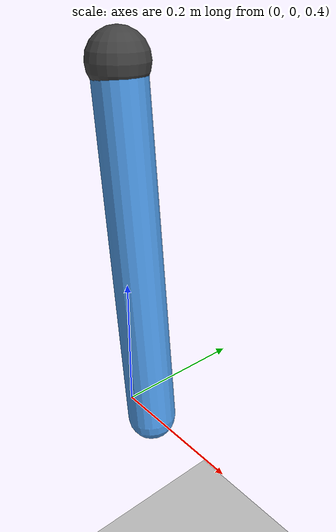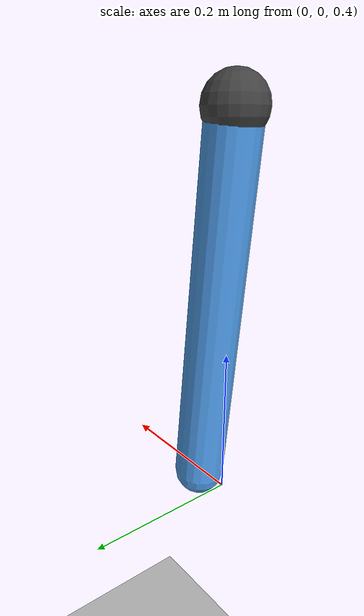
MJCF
<!-- MuJoCo model for a single-link pendulum controlled by a torque motor -->
<mujoco model="simple-pendulum">
    <!-- Global simulation settings: timestep (s), gravity vector, and integrator -->
    <option timestep="0.002" gravity="0 0 -9.81" integrator="RK4"/>

    <!-- Viewer appearance defaults to make the scene readable -->
    <visual>
        <!-- Render actuators thick enough to see in the viewer overlay -->
        <scale actuatorlength="0.4" actuatorwidth="0.2"/>
        <!-- Add a subtle atmospheric haze so the pendulum stands out -->
        <rgba haze="0.15 0.15 0.2 1"/>
    </visual>

    <!-- Default section defines reusable templates for geoms and joints -->
    <default>
        <!-- All geoms inherit this color and friction unless they override it -->
        <geom rgba="0.3 0.6 0.9 1" friction="0.6 0.1 0.03"/>
        <!-- Joints inherit range, damping, and stiffness; hinge will use this -->
        <!-- Keep damping low and stiffness zero so the pendulum swings freely -->
        <joint limited="true" range="-180 180" damping="0.002" stiffness="0"/>
    </default>

    <!-- Asset library: textures and materials referenced by geoms below -->
    <asset>
        <!-- Gradient skybox renders behind the scene -->
        <texture name="sky" type="skybox" builtin="gradient" rgb1="0.2 0.3 0.45" rgb2="0.05 0.05 0.1" width="512" height="512"/>
        <!-- Checker texture used for the ground plane -->
        <texture name="floor" type="2d" builtin="checker" rgb1="0.2 0.2 0.2" rgb2="0.15 0.15 0.15" width="512" height="512"/>
        <!-- Material binds the floor texture to the ground geom -->
        <material name="floor_mat" texture="floor" reflectance="0.15"/>
    </asset>

    <!-- worldbody hosts the actual physical scene graph -->
    <worldbody>
        <!-- Overhead light that points toward the origin -->
        <light pos="4 2 6" dir="-1 -1 -2" diffuse="0.8 0.8 0.8" specular="0.3 0.3 0.3"/>
        <!-- Infinite plane acting as a visual ground -->
        <geom type="plane" size="2 2 0.1" material="floor_mat" rgba="0.8 0.8 0.8 1"/>

        <!-- Fixed base body located slightly above the ground -->
        <body name="base" pos="0 0 0.9">
            <!-- Small sphere marks the hinge location visually -->
            <geom name="base" type="sphere" size="0.04" rgba="0.25 0.25 0.25 1"/>

            <!-- Child body carrying the pendulum link -->
            <body name="link" pos="0 0 0">
                <!-- Single rotational DOF about the y-axis -->
                <joint name="hinge" type="hinge" axis="0 1 0"/>
                <!-- Slender rod geometry modeled as a capsule from pivot to tip -->
                <geom type="capsule" fromto="0 0 0 0.05 0 -0.5" size="0.035"/>
                <!-- Offset a site at the tip for logging/visualization -->
                <!-- Sites are named reference frames attached to bodies; on their own they store pose, not measurements. -->
                <site name="tip" pos="0.05 0 -0.5" size="0.03" rgba="0.8 0.3 0.3 1"/>
                <!-- Lumped mass/inertia properties for the link -->
                <inertial pos="0 0 -0.25" mass="1" diaginertia="0.01 0.01 0.005"/>
            </body>
        </body>
    </worldbody>

    <!-- Actuator set: map controls to generalized forces -->
    <actuator>
        <!-- Motor applies torque at the hinge joint with +/-10 Nm range -->
        <motor name="hinge_torque" joint="hinge" gear="1" ctrlrange="-10 10"/>
    </actuator>

    <!-- Sensors expose joint and site measurements to mujoco.MjData.sensordata -->
    <sensor>
        <!-- Joint-based sensors are convenient for controllers and logging -->
        <jointpos name="hinge_angle" joint="hinge"/>
        <jointvel name="hinge_velocity" joint="hinge"/>

        <!-- Sensors request specific measurements each step. These frame sensors read pose/IMU values from the tip site. -->
        <framepos name="tip_position" objtype="site" objname="tip"/>
        <framequat name="tip_orientation" objtype="site" objname="tip"/>
        <frameangvel name="tip_angular_velocity" objtype="site" objname="tip"/>
        <accelerometer name="tip_linear_acceleration" site="tip"/>
    </sensor>
</mujoco>
